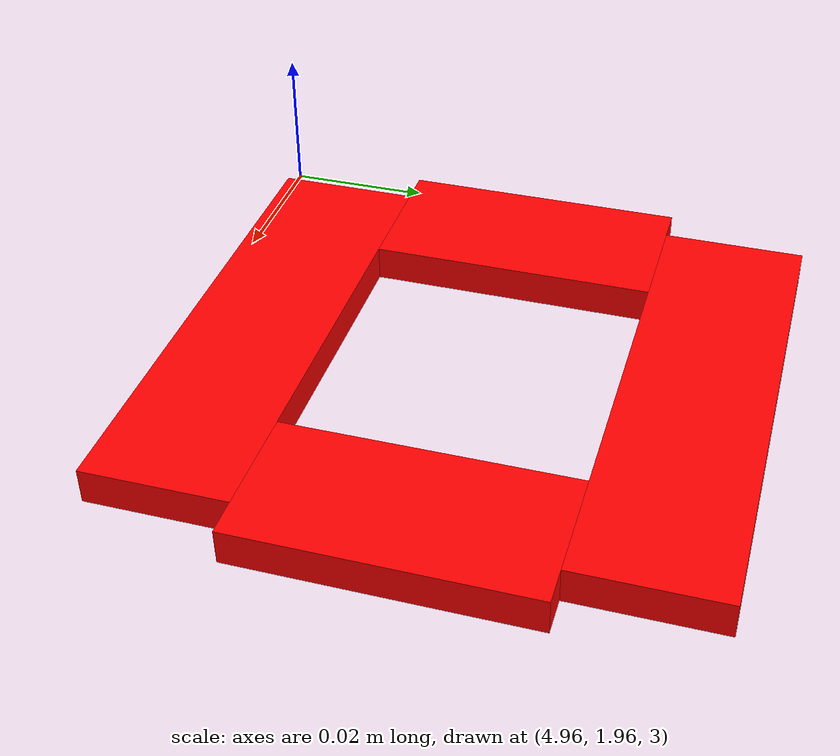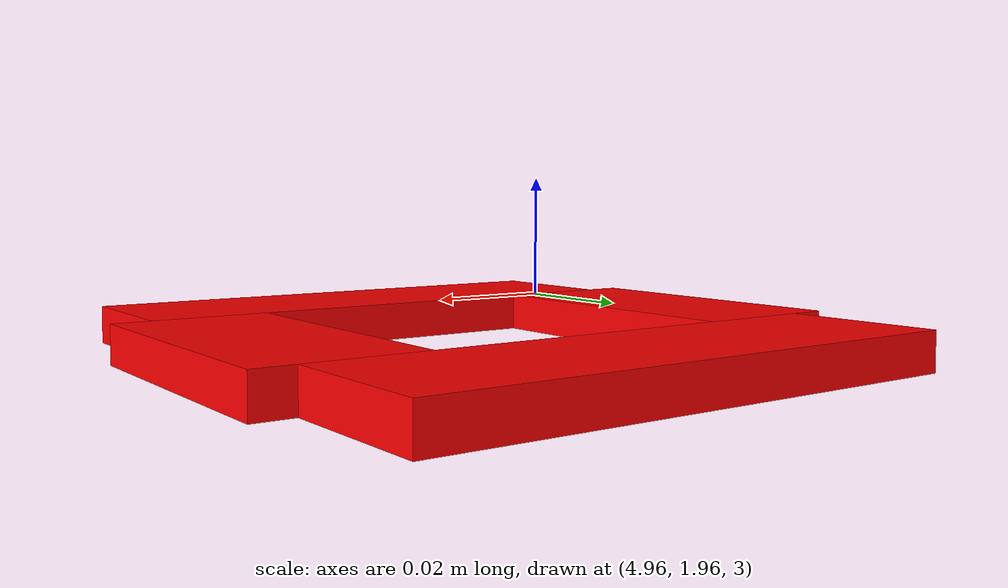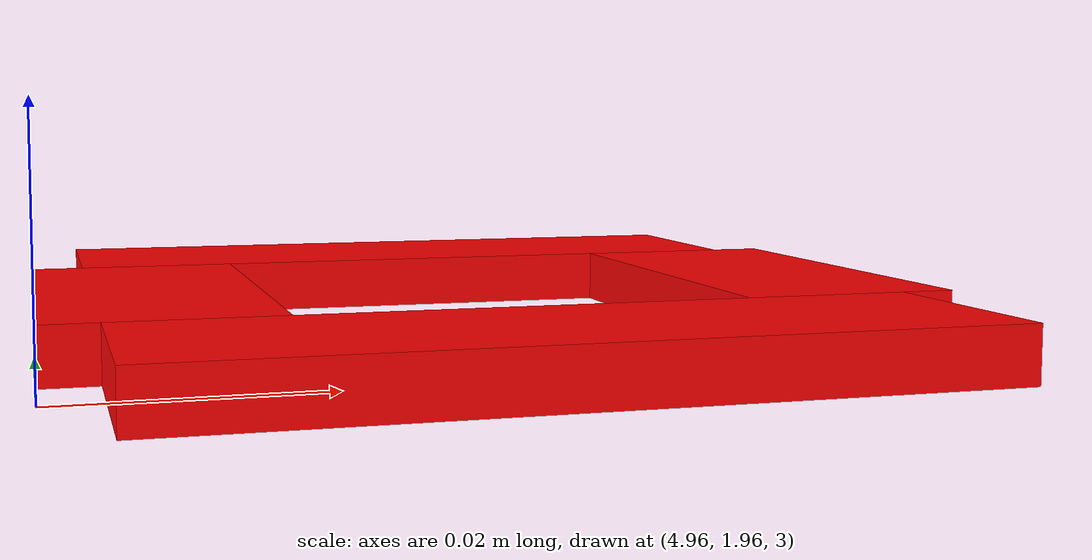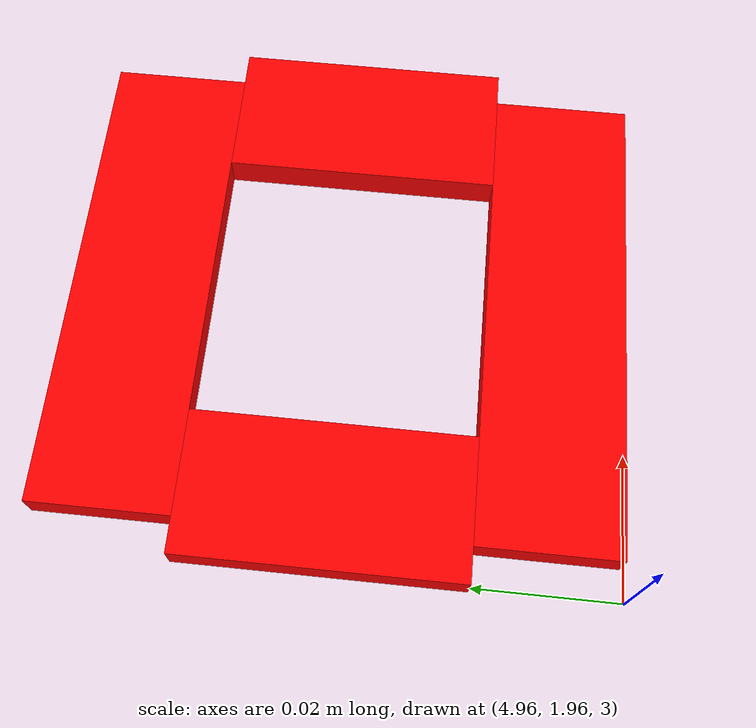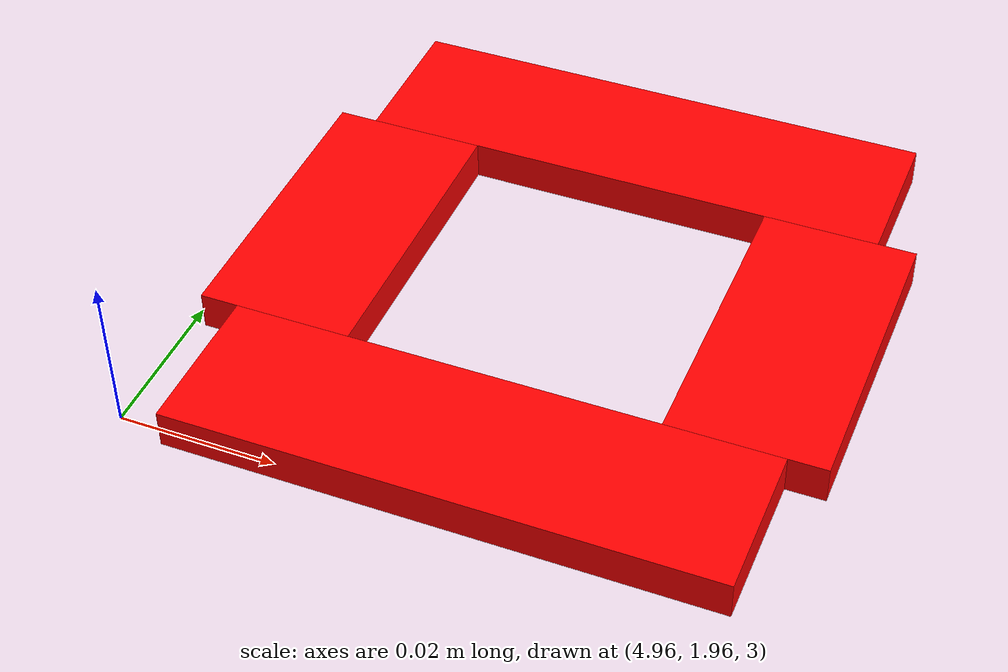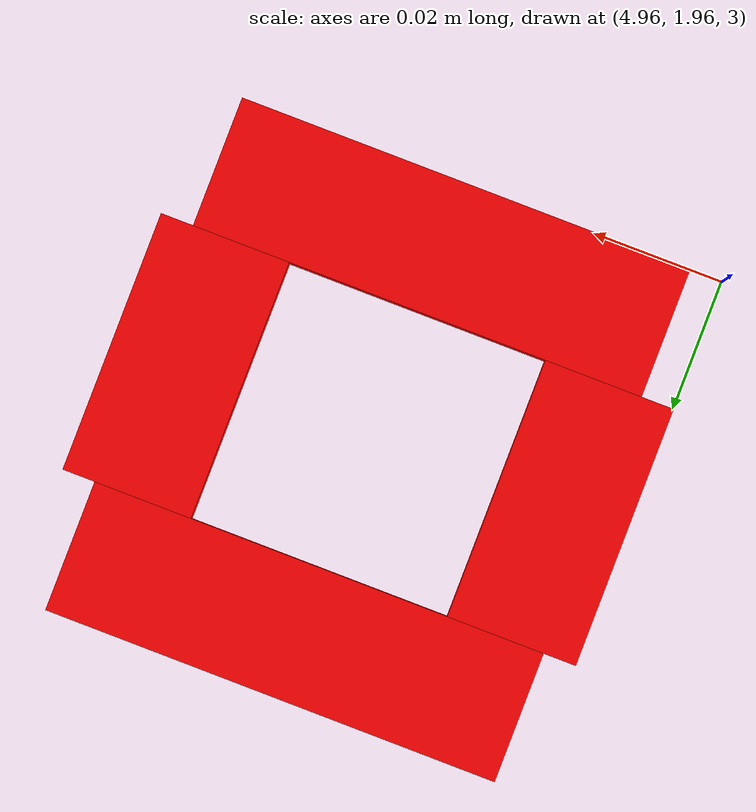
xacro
<?xml version="1.0"?>
<robot xmlns:xacro="http://www.ros.org/wiki/xacro" name="acts_system">

  <xacro:include filename="$(find acts_simulator)/urdf/components/cable_guide.xacro" />

  <link name="world"/>

  <xacro:cable_guide prefix="guide"
    parent_link="world"
    x="5" y="2" z="3"
  />
  <gazebo reference="guide_link">
  <collision name="guide_collision">
    <surface>
      <contact>
        <ode>
          <kp>10000.0</kp>
          <kd>100.0</kd>
          <min_depth>0.005</min_depth>
          <max_vel>0.1</max_vel>
        </ode>
      </contact>
      <friction>
        <ode>
          <mu>0.05</mu>
          <mu2>0.05</mu2>
        </ode>
      </friction>
    </surface>
  </collision>
</gazebo>

</robot>

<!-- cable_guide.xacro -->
<robot xmlns:xacro="http://www.ros.org/wiki/xacro">
  <xacro:macro name="cable_guide" params="prefix parent_link x y z">

    <link name="${prefix}_base_center">
      <inertial>
        <mass value="0.01"/>
        <inertia ixx="1e-6" ixy="0" ixz="0" iyy="1e-6" iyz="0" izz="1e-6"/>
      </inertial>
    </link>

    <joint name="${prefix}_base_joint" type="fixed">
      <parent link="${parent_link}"/>
      <child link="${prefix}_base_center"/>
      <origin xyz="${x} ${y} ${z}" rpy="0 0 0"/>
    </joint>

    <xacro:macro name="pulley_wall" params="wall_name wx wy wsx wsy">
      <link name="${prefix}_wall_${wall_name}">
        <inertial>
          <mass value="0.01"/>
          <inertia ixx="1e-5" ixy="0" ixz="0" iyy="1e-5" iyz="0" izz="1e-5"/>
        </inertial>
        <visual>
          <geometry><box size="${wsx} ${wsy} 0.005"/></geometry>
          <material name="red"><color rgba="1 0 0 1"/></material>
        </visual>
        <collision>
          <geometry><box size="${wsx} ${wsy} 0.001"/></geometry>
        </collision>
      </link>
      <joint name="${prefix}_joint_${wall_name}" type="fixed">
        <parent link="${prefix}_base_center"/>
        <child link="${prefix}_wall_${wall_name}"/>
        <origin xyz="${wx} ${wy} 0" rpy="0 0 0"/>
      </joint>
    </xacro:macro>

    <xacro:pulley_wall wall_name="n" wx="0"    wy="0.03" wsx="0.07" wsy="0.02"/>
    <xacro:pulley_wall wall_name="s" wx="0"    wy="-0.03" wsx="0.07" wsy="0.02"/>
    <xacro:pulley_wall wall_name="e" wx="0.03" wy="0"    wsx="0.02" wsy="0.04"/>
    <xacro:pulley_wall wall_name="w" wx="-0.03" wy="0"    wsx="0.02" wsy="0.04"/>

  </xacro:macro>
</robot>
